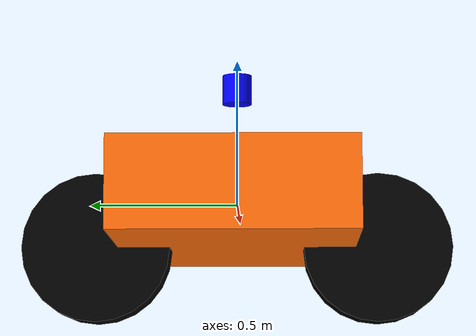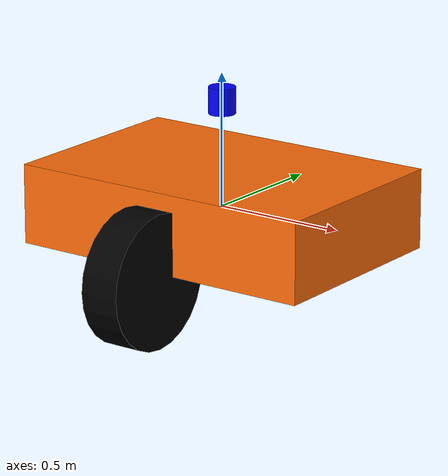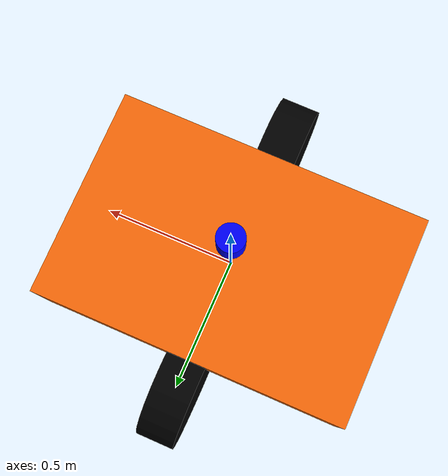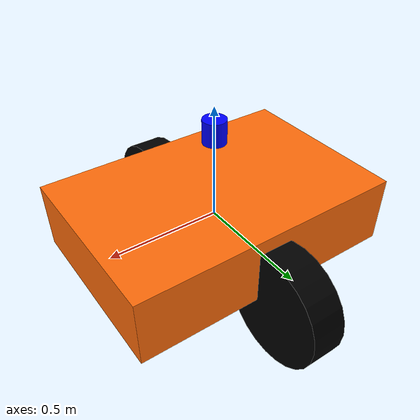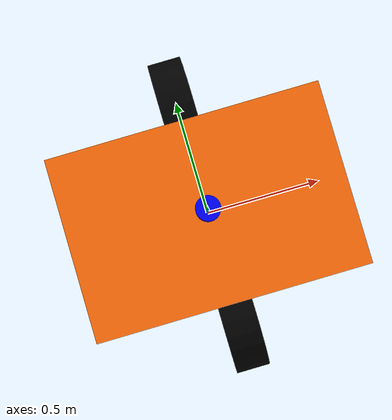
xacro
<?xml version="1.0"?>
<robot name="mars_rover" xmlns:xacro="http://www.ros.org/wiki/xacro">

  <!-- Constants for robot dimensions -->
  <xacro:property name="PI" value="3.1415926535897931"/>
  <xacro:property name="base_mass" value="15" />
  <xacro:property name="base_width" value="0.8"/>
  <xacro:property name="base_length" value="1.2"/>
  <xacro:property name="base_height" value="0.3"/>
  <xacro:property name="wheel_mass" value="2.5" />
  <xacro:property name="wheel_len" value="0.15"/>
  <xacro:property name="wheel_radius" value="0.25"/>

  <!-- Base Link -->
  <link name="base_link">
    <collision>
      <origin xyz="0 0 0" rpy="0 0 0"/>
      <geometry>
        <box size="${base_length} ${base_width} ${base_height}"/>
      </geometry>
    </collision>

    <visual>
      <origin xyz="0 0 0" rpy="0 0 0"/>
      <geometry>
        <box size="${base_length} ${base_width} ${base_height}"/>
      </geometry>
      <material name="orange">
        <color rgba="1.0 0.423529411765 0.0392156862745 1.0"/>
      </material>
    </visual>

    <inertial>
      <origin xyz="0 0 0" rpy="0 0 0"/>
      <mass value="${base_mass}"/>
      <inertia
        ixx="${base_mass / 12.0 * (base_width*base_width + base_height*base_height)}" ixy="0.0" ixz="0.0"
        iyy="${base_mass / 12.0 * (base_height*base_height + base_length*base_length)}" iyz="0.0"
        izz="${base_mass / 12.0 * (base_width*base_width + base_length*base_length)}"/>
    </inertial>
  </link>

  <!-- Right Wheel -->
  <joint name="right_wheel_hinge" type="continuous">
    <parent link="base_link"/>
    <child link="right_wheel"/>
    <origin xyz="0 -${base_width/2 + wheel_len/2} -${base_height/2}" rpy="0 0 0"/>
    <axis xyz="0 1 0"/>
    <dynamics damping="0.2"/>
  </joint>

  <link name="right_wheel">
    <collision>
      <origin xyz="0 0 0" rpy="0 ${PI/2} 0"/>
      <geometry>
        <cylinder length="${wheel_len}" radius="${wheel_radius}"/>
      </geometry>
    </collision>

    <visual>
      <origin xyz="0 0 0" rpy="0 ${PI/2} 0"/>
      <geometry>
        <cylinder length="${wheel_len}" radius="${wheel_radius}"/>
      </geometry>
      <material name="black">
        <color rgba="0.0 0.0 0.0 1.0"/>
      </material>
    </visual>

    <inertial>
      <origin xyz="0 0 0" rpy="0 ${PI/2} 0"/>
      <mass value="${wheel_mass}"/>
      <inertia
        ixx="${wheel_mass / 12.0 * (3*wheel_radius + wheel_len*wheel_len)}" ixy="0.0" ixz="0.0"
        iyy="${wheel_mass / 12.0 * wheel_radius*wheel_radius}" iyz="0.0"
        izz="${wheel_mass / 12.0 * (3*wheel_radius + wheel_len*wheel_len)}"/>
    </inertial>
  </link>

  <!-- Left Wheel -->
  <joint name="left_wheel_hinge" type="continuous">
    <parent link="base_link"/>
    <child link="left_wheel"/>
    <origin xyz="0 ${base_width/2 + wheel_len/2} -${base_height/2}" rpy="0 0 0"/>
    <axis xyz="0 1 0"/>
    <dynamics damping="0.2"/>
  </joint>

  <link name="left_wheel">
    <collision>
      <origin xyz="0 0 0" rpy="0 ${PI/2} 0"/>
      <geometry>
        <cylinder length="${wheel_len}" radius="${wheel_radius}"/>
      </geometry>
    </collision>

    <visual>
      <origin xyz="0 0 0" rpy="0 ${PI/2} 0"/>
      <geometry>
        <cylinder length="${wheel_len}" radius="${wheel_radius}"/>
      </geometry>
      <material name="black">
        <color rgba="0.0 0.0 0.0 1.0"/>
      </material>
    </visual>

    <inertial>
      <origin xyz="0 0 0" rpy="0 ${PI/2} 0"/>
      <mass value="${wheel_mass}"/>
      <inertia
        ixx="${wheel_mass / 12.0 * (3*wheel_radius + wheel_len*wheel_len)}" ixy="0.0" ixz="0.0"
        iyy="${wheel_mass / 12.0 * wheel_radius*wheel_radius}" iyz="0.0"
        izz="${wheel_mass / 12.0 * (3*wheel_radius + wheel_len*wheel_len)}"/>
    </inertial>
  </link>

  <!-- Lidar -->
  <joint name="lidar_joint" type="fixed">
    <axis xyz="0 1 0" />
    <origin xyz="0 0 0.4" rpy="0 0 0"/>
    <parent link="base_link"/>
    <child link="lidar_link"/>
  </joint>

  <link name="lidar_link">
    <collision>
      <origin xyz="0 0 0" rpy="0 0 0"/>
      <geometry>
        <cylinder radius="0.05" length="0.1"/>
      </geometry>
    </collision>

    <visual>
      <origin xyz="0 0 0" rpy="0 0 0"/>
      <geometry>
        <cylinder radius="0.05" length="0.1"/>
      </geometry>
      <material name="blue">
        <color rgba="0.0 0.0 1.0 1.0"/>
      </material>
    </visual>

    <inertial>
      <mass value="0.125" />
      <origin xyz="0 0 0" rpy="0 0 0"/>
      <inertia ixx="0.001" ixy="0" ixz="0" iyy="0.001" iyz="0" izz="0.001" />
    </inertial>
  </link>

  <!-- Gazebo plugins for new Gazebo -->
  <gazebo reference="base_link">
    <material>
      <ambient>1.0 0.4 0.0 1.0</ambient>
      <diffuse>1.0 0.4 0.0 1.0</diffuse>
    </material>
  </gazebo>

  <gazebo reference="right_wheel">
    <material>
      <ambient>0.2 0.2 0.2 1.0</ambient>
      <diffuse>0.2 0.2 0.2 1.0</diffuse>
    </material>
    <mu1>0.2</mu1>
    <mu2>0.2</mu2>
  </gazebo>

  <gazebo reference="left_wheel">
    <material>
      <ambient>0.2 0.2 0.2 1.0</ambient>
      <diffuse>0.2 0.2 0.2 1.0</diffuse>
    </material>
    <mu1>0.2</mu1>
    <mu2>0.2</mu2>
  </gazebo>

  <gazebo reference="lidar_link">
    <material>
      <ambient>0.0 0.0 1.0 1.0</ambient>
      <diffuse>0.0 0.0 1.0 1.0</diffuse>
    </material>
  </gazebo>

  <!-- LiDAR sensor plugin for new Gazebo -->
  <gazebo reference="lidar_link">
    <sensor name="gpu_lidar" type="gpu_lidar">
      <pose>0 0 0 0 0 0</pose>
      <topic>scan</topic>
      <update_rate>10</update_rate>
      <lidar>
        <scan>
          <horizontal>
            <samples>640</samples>
            <resolution>1</resolution>
            <min_angle>-1.396263</min_angle>
            <max_angle>1.396263</max_angle>
          </horizontal>
          <vertical>
            <samples>1</samples>
            <resolution>0.01</resolution>
            <min_angle>0</min_angle>
            <max_angle>0</max_angle>
          </vertical>
        </scan>
        <range>
          <min>0.08</min>
          <max>10.0</max>
          <resolution>0.01</resolution>
        </range>
      </lidar>
      <alwaysOn>1</alwaysOn>
      <visualize>true</visualize>
    </sensor>
  </gazebo>

  <!-- Differential drive plugin for new Gazebo -->
  <gazebo>
    <plugin filename="libignition-gazebo-diff-drive-system.so" name="ignition::gazebo::systems::DiffDrive">
      <left_joint>left_wheel_hinge</left_joint>
      <right_joint>right_wheel_hinge</right_joint>
      <wheel_separation>0.95</wheel_separation>
      <wheel_radius>0.25</wheel_radius>
      <odom_publish_frequency>30</odom_publish_frequency>
      <topic>cmd_vel</topic>
      <odom_topic>odom</odom_topic>
      <frame_id>odom</frame_id>
      <child_frame_id>base_link</child_frame_id>
    </plugin>
  </gazebo>

</robot>
